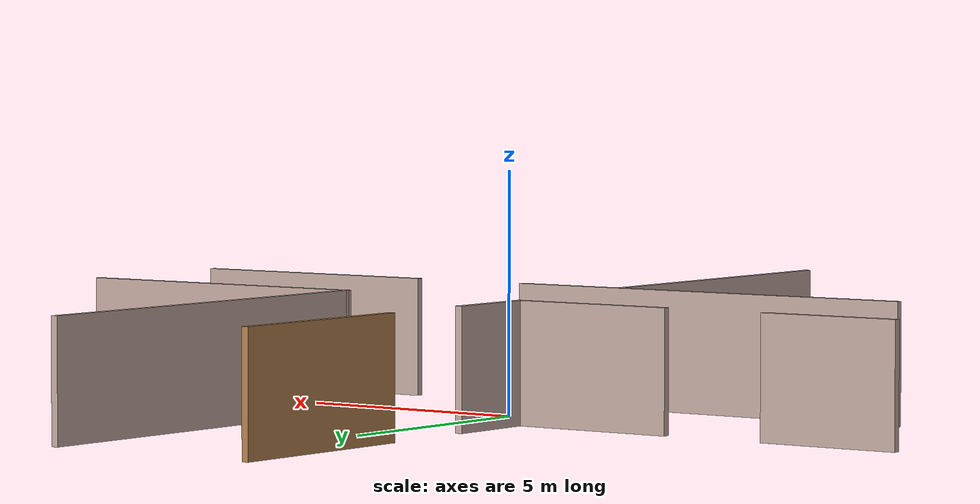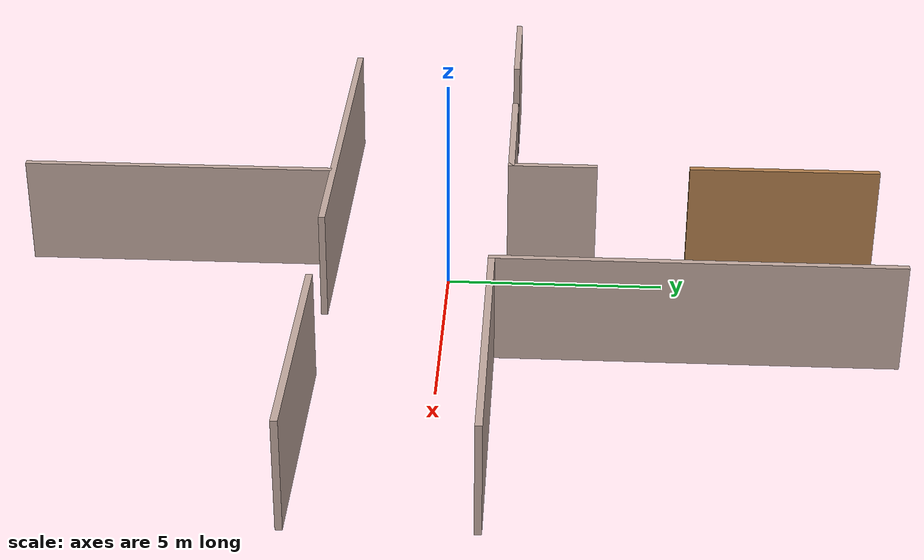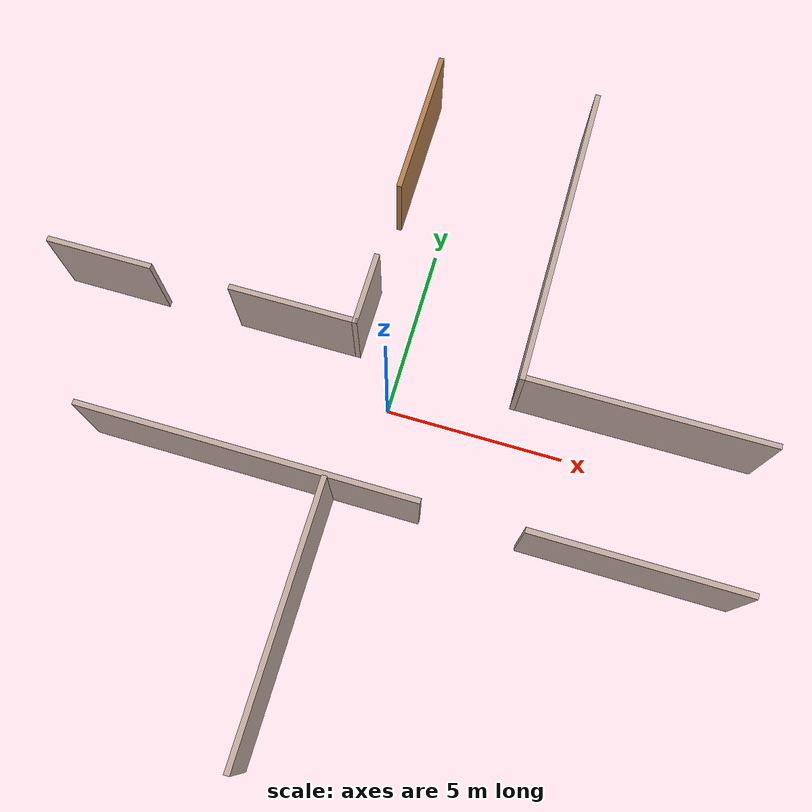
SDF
<?xml version='1.0'?>
<sdf version='1.7'>
  <model name='world2'>
    <pose>0.033897 0.018628 0 0 -0 0</pose>
    <link name='Wall_14'>
      <collision name='Wall_14_Collision'>
        <geometry>
          <box>
            <size>5.75 0.15 2.5</size>
          </box>
        </geometry>
        <pose>0 0 1.25 0 -0 0</pose>
      </collision>
      <visual name='Wall_14_Visual'>
        <pose>0 0 1.25 0 -0 0</pose>
        <geometry>
          <box>
            <size>5.75 0.15 2.5</size>
          </box>
        </geometry>
        <material>
          <script>
            <uri>file://media/materials/scripts/gazebo.material</uri>
            <name>Gazebo/Grey</name>
          </script>
          <ambient>0.760784 0.662745 0.627451 1</ambient>
        </material>
        <meta>
          <layer>0</layer>
        </meta>
      </visual>
      <pose>7.18182 -2.73449 0 0 -0 3.14159</pose>
    </link>
    <link name='Wall_16'>
      <collision name='Wall_16_Collision'>
        <geometry>
          <box>
            <size>9.25 0.15 2.5</size>
          </box>
        </geometry>
        <pose>0 0 1.25 0 -0 0</pose>
      </collision>
      <visual name='Wall_16_Visual'>
        <pose>0 0 1.25 0 -0 0</pose>
        <geometry>
          <box>
            <size>9.25 0.15 2.5</size>
          </box>
        </geometry>
        <material>
          <script>
            <uri>file://media/materials/scripts/gazebo.material</uri>
            <name>Gazebo/Grey</name>
          </script>
          <ambient>0.760784 0.662745 0.627451 1</ambient>
        </material>
        <meta>
          <layer>0</layer>
        </meta>
      </visual>
      <pose>-2.96432 -2.76823 0 0 -0 3.14159</pose>
    </link>
    <link name='Wall_18'>
      <collision name='Wall_18_Collision'>
        <geometry>
          <box>
            <size>7.25 0.15 2.5</size>
          </box>
        </geometry>
        <pose>0 0 1.25 0 -0 0</pose>
      </collision>
      <visual name='Wall_18_Visual'>
        <pose>0 0 1.25 0 -0 0</pose>
        <geometry>
          <box>
            <size>7.25 0.15 2.5</size>
          </box>
        </geometry>
        <material>
          <script>
            <uri>file://media/materials/scripts/gazebo.material</uri>
            <name>Gazebo/Grey</name>
          </script>
          <ambient>0.760784 0.662745 0.627451 1</ambient>
        </material>
        <meta>
          <layer>0</layer>
        </meta>
      </visual>
      <pose>-0.82189 -6.43381 0 0 -0 -1.5708</pose>
    </link>
    <link name='Wall_21'>
      <collision name='Wall_21_Collision'>
        <geometry>
          <box>
            <size>2.101 0.15 2.5</size>
          </box>
        </geometry>
        <pose>0 0 1.25 0 -0 0</pose>
      </collision>
      <visual name='Wall_21_Visual'>
        <pose>0 0 1.25 0 -0 0</pose>
        <geometry>
          <box>
            <size>2.101 0.15 2.5</size>
          </box>
        </geometry>
        <material>
          <script>
            <uri>file://media/materials/scripts/gazebo.material</uri>
            <name>Gazebo/Grey</name>
          </script>
          <ambient>0.760784 0.662745 0.627451 1</ambient>
        </material>
        <meta>
          <layer>0</layer>
        </meta>
      </visual>
      <pose>-1.32618 2.37587 0 0 -0 -1.5708</pose>
    </link>
    <link name='Wall_22'>
      <collision name='Wall_22_Collision'>
        <geometry>
          <box>
            <size>3.57114 0.15 2.5</size>
          </box>
        </geometry>
        <pose>0 0 1.25 0 -0 0</pose>
      </collision>
      <visual name='Wall_22_Visual'>
        <pose>0 0 1.25 0 -0 0</pose>
        <geometry>
          <box>
            <size>3.57114 0.15 2.5</size>
          </box>
        </geometry>
        <material>
          <script>
            <uri>file://media/materials/scripts/gazebo.material</uri>
            <name>Gazebo/Grey</name>
          </script>
          <ambient>0.760784 0.662745 0.627451 1</ambient>
        </material>
        <meta>
          <layer>0</layer>
        </meta>
      </visual>
      <pose>-3.06734 1.40027 0 0 -0 -3.14153</pose>
    </link>
    <link name='Wall_24'>
      <collision name='Wall_24_Collision'>
        <geometry>
          <box>
            <size>3 0.15 2.5</size>
          </box>
        </geometry>
        <pose>0 0 1.25 0 -0 0</pose>
      </collision>
      <visual name='Wall_24_Visual'>
        <pose>0 0 1.25 0 -0 0</pose>
        <geometry>
          <box>
            <size>3 0.15 2.5</size>
          </box>
        </geometry>
        <material>
          <script>
            <uri>file://media/materials/scripts/gazebo.material</uri>
            <name>Gazebo/Grey</name>
          </script>
          <ambient>0.760784 0.662745 0.627451 1</ambient>
        </material>
        <meta>
          <layer>0</layer>
        </meta>
      </visual>
      <pose>-8.55682 1.37424 0 0 -0 3.14159</pose>
    </link>
    <link name='Wall_5'>
      <collision name='Wall_5_Collision'>
        <geometry>
          <box>
            <size>4.43 0.15 2.5</size>
          </box>
        </geometry>
        <pose>0 0 1.25 0 -0 0</pose>
      </collision>
      <visual name='Wall_5_Visual'>
        <pose>0 0 1.25 0 -0 0</pose>
        <geometry>
          <box>
            <size>4.43 0.15 2.5</size>
          </box>
        </geometry>
        <material>
          <script>
            <uri>file://media/materials/scripts/gazebo.material</uri>
            <name>Gazebo/Wood</name>
          </script>
          <ambient>0.760784 0.662745 0.627451 1</ambient>
        </material>
        <meta>
          <layer>0</layer>
        </meta>
      </visual>
      <pose>-1.3489 7.80687 0 0 -0 -1.5708</pose>
    </link>
    <link name='Wall_7'>
      <collision name='Wall_7_Collision'>
        <geometry>
          <box>
            <size>9.02687 0.15 2.5</size>
          </box>
        </geometry>
        <pose>0 0 1.25 0 -0 0</pose>
      </collision>
      <visual name='Wall_7_Visual'>
        <pose>0 0 1.25 0 -0 0</pose>
        <geometry>
          <box>
            <size>9.02687 0.15 2.5</size>
          </box>
        </geometry>
        <material>
          <script>
            <uri>file://media/materials/scripts/gazebo.material</uri>
            <name>Gazebo/Grey</name>
          </script>
          <ambient>0.760784 0.662745 0.627451 1</ambient>
        </material>
        <meta>
          <layer>0</layer>
        </meta>
      </visual>
      <pose>3.2941 5.54537 0 0 -0 -1.5708</pose>
    </link>
    <link name='Wall_8'>
      <collision name='Wall_8_Collision'>
        <geometry>
          <box>
            <size>6.79012 0.15 2.5</size>
          </box>
        </geometry>
        <pose>0 0 1.25 0 -0 0</pose>
      </collision>
      <visual name='Wall_8_Visual'>
        <pose>0 0 1.25 0 -0 0</pose>
        <geometry>
          <box>
            <size>6.79012 0.15 2.5</size>
          </box>
        </geometry>
        <material>
          <script>
            <uri>file://media/materials/scripts/gazebo.material</uri>
            <name>Gazebo/Grey</name>
          </script>
          <ambient>0.760784 0.662745 0.627451 1</ambient>
        </material>
        <meta>
          <layer>0</layer>
        </meta>
      </visual>
      <pose>6.61416 1.11448 0 0 -0 0.002141</pose>
    </link>
    <static>1</static>
  </model>
</sdf>
